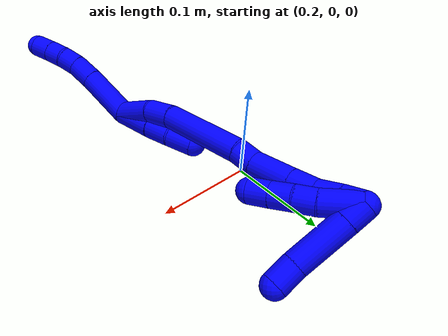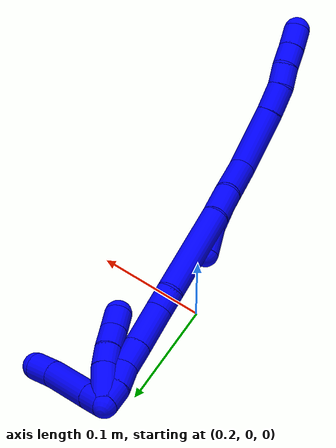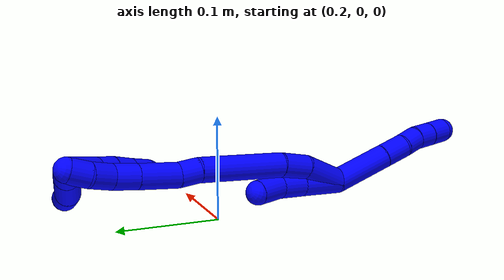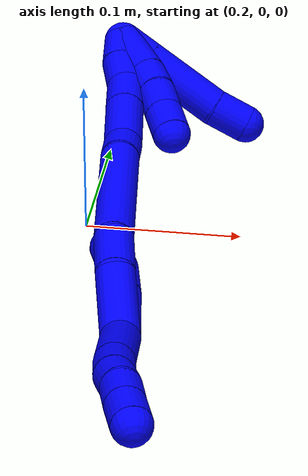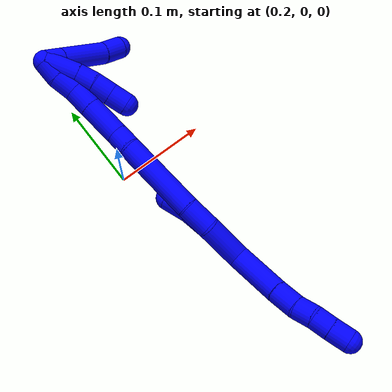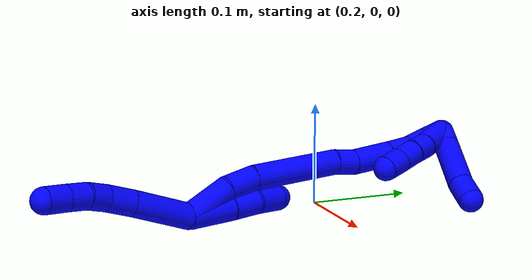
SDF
<sdf version="1.7">
 <world name="default">
  <model name="1">
   <static>0</static>
   <link name="1">
    <collision name="collision-cylinder-e_1_2_8">
     <pose>-0.002256 -0.019876 0.022284 0.72834 -0.075423 -0.028761</pose>
     <geometry><cylinder><radius>0.0125</radius><length>0.059891</length></cylinder></geometry>
     <surface>
      <friction><ode><mu>1.16</mu><mu2>1.16</mu2><slip1>0</slip1><slip2>0</slip2></ode></friction>
      <contact><ode><kp>1e+06</kp><kd>1</kd><max_vel>0</max_vel><min_depth>0.001</min_depth></ode></contact>
     </surface>
    </collision>
    <visual name="visual-cylinder-e_1_2_8">
     <pose>-0.002256 -0.019876 0.022284 0.72834 -0.075423 -0.028761</pose>
     <geometry><cylinder><radius>0.0125</radius><length>0.059891</length></cylinder></geometry>
     <material><ambient>0 0 1 1</ambient></material>
    </visual>
    <collision name="collision-cylinder-e_2_8_9">
     <pose>-0.006102 -0.048241 0.055035 0.681427 -0.117347 -0.041646</pose>
     <geometry><cylinder><radius>0.0125</radius><length>0.02714</length></cylinder></geometry>
     <surface>
      <friction><ode><mu>1.16</mu><mu2>1.16</mu2><slip1>0</slip1><slip2>0</slip2></ode></friction>
      <contact><ode><kp>1e+06</kp><kd>1</kd><max_vel>0</max_vel><min_depth>0.001</min_depth></ode></contact>
     </surface>
    </collision>
    <visual name="visual-cylinder-e_2_8_9">
     <pose>-0.006102 -0.048241 0.055035 0.681427 -0.117347 -0.041646</pose>
     <geometry><cylinder><radius>0.0125</radius><length>0.02714</length></cylinder></geometry>
     <material><ambient>0 0 1 1</ambient></material>
    </visual>
    <collision name="collision-cylinder-e_3_9_10">
     <pose>-0.010445 -0.062012 0.073838 0.564815 -0.272176 -0.079425</pose>
     <geometry><cylinder><radius>0.0125</radius><length>0.020492</length></cylinder></geometry>
     <surface>
      <friction><ode><mu>1.16</mu><mu2>1.16</mu2><slip1>0</slip1><slip2>0</slip2></ode></friction>
      <contact><ode><kp>1e+06</kp><kd>1</kd><max_vel>0</max_vel><min_depth>0.001</min_depth></ode></contact>
     </surface>
    </collision>
    <visual name="visual-cylinder-e_3_9_10">
     <pose>-0.010445 -0.062012 0.073838 0.564815 -0.272176 -0.079425</pose>
     <geometry><cylinder><radius>0.0125</radius><length>0.020492</length></cylinder></geometry>
     <material><ambient>0 0 1 1</ambient></material>
    </visual>
    <collision name="collision-cylinder-e_4_10_11">
     <pose>-0.014532 -0.07132 0.091398 0.411562 -0.131708 -0.02753</pose>
     <geometry><cylinder><radius>0.0125</radius><length>0.020303</length></cylinder></geometry>
     <surface>
      <friction><ode><mu>1.16</mu><mu2>1.16</mu2><slip1>0</slip1><slip2>0</slip2></ode></friction>
      <contact><ode><kp>1e+06</kp><kd>1</kd><max_vel>0</max_vel><min_depth>0.001</min_depth></ode></contact>
     </surface>
    </collision>
    <visual name="visual-cylinder-e_4_10_11">
     <pose>-0.014532 -0.07132 0.091398 0.411562 -0.131708 -0.02753</pose>
     <geometry><cylinder><radius>0.0125</radius><length>0.020303</length></cylinder></geometry>
     <material><ambient>0 0 1 1</ambient></material>
    </visual>
    <collision name="collision-cylinder-e_5_11_6">
     <pose>-0.017715 -0.079479 0.110741 0.387665 -0.167578 -0.032969</pose>
     <geometry><cylinder><radius>0.0125</radius><length>0.022174</length></cylinder></geometry>
     <surface>
      <friction><ode><mu>1.16</mu><mu2>1.16</mu2><slip1>0</slip1><slip2>0</slip2></ode></friction>
      <contact><ode><kp>1e+06</kp><kd>1</kd><max_vel>0</max_vel><min_depth>0.001</min_depth></ode></contact>
     </surface>
    </collision>
    <visual name="visual-cylinder-e_5_11_6">
     <pose>-0.017715 -0.079479 0.110741 0.387665 -0.167578 -0.032969</pose>
     <geometry><cylinder><radius>0.0125</radius><length>0.022174</length></cylinder></geometry>
     <material><ambient>0 0 1 1</ambient></material>
    </visual>
    <collision name="collision-cylinder-e_1_2_12">
     <pose>-0.000899 0.007512 -0.020849 -2.79576 -0.040524 0.231012</pose>
     <geometry><cylinder><radius>0.0125</radius><length>0.044358</length></cylinder></geometry>
     <surface>
      <friction><ode><mu>1.16</mu><mu2>1.16</mu2><slip1>0</slip1><slip2>0</slip2></ode></friction>
      <contact><ode><kp>1e+06</kp><kd>1</kd><max_vel>0</max_vel><min_depth>0.001</min_depth></ode></contact>
     </surface>
    </collision>
    <visual name="visual-cylinder-e_1_2_12">
     <pose>-0.000899 0.007512 -0.020849 -2.79576 -0.040524 0.231012</pose>
     <geometry><cylinder><radius>0.0125</radius><length>0.044358</length></cylinder></geometry>
     <material><ambient>0 0 1 1</ambient></material>
    </visual>
    <collision name="collision-cylinder-e_2_12_13">
     <pose>-0.001491 0.019186 -0.054912 -2.83652 0.022074 -0.143347</pose>
     <geometry><cylinder><radius>0.0125</radius><length>0.027716</length></cylinder></geometry>
     <surface>
      <friction><ode><mu>1.16</mu><mu2>1.16</mu2><slip1>0</slip1><slip2>0</slip2></ode></friction>
      <contact><ode><kp>1e+06</kp><kd>1</kd><max_vel>0</max_vel><min_depth>0.001</min_depth></ode></contact>
     </surface>
    </collision>
    <visual name="visual-cylinder-e_2_12_13">
     <pose>-0.001491 0.019186 -0.054912 -2.83652 0.022074 -0.143347</pose>
     <geometry><cylinder><radius>0.0125</radius><length>0.027716</length></cylinder></geometry>
     <material><ambient>0 0 1 1</ambient></material>
    </visual>
    <collision name="collision-cylinder-e_3_13_5">
     <pose>0.00154 0.028139 -0.080956 -2.78411 0.196461 -0.998698</pose>
     <geometry><cylinder><radius>0.0125</radius><length>0.027926</length></cylinder></geometry>
     <surface>
      <friction><ode><mu>1.16</mu><mu2>1.16</mu2><slip1>0</slip1><slip2>0</slip2></ode></friction>
      <contact><ode><kp>1e+06</kp><kd>1</kd><max_vel>0</max_vel><min_depth>0.001</min_depth></ode></contact>
     </surface>
    </collision>
    <visual name="visual-cylinder-e_3_13_5">
     <pose>0.00154 0.028139 -0.080956 -2.78411 0.196461 -0.998698</pose>
     <geometry><cylinder><radius>0.0125</radius><length>0.027926</length></cylinder></geometry>
     <material><ambient>0 0 1 1</ambient></material>
    </visual>
    <collision name="collision-cylinder-e_1_2_14">
     <pose>-0.002917 -0.0013 -0.023127 3.08546 -0.125281 -2.29986</pose>
     <geometry><cylinder><radius>0.0125</radius><length>0.046692</length></cylinder></geometry>
     <surface>
      <friction><ode><mu>1.16</mu><mu2>1.16</mu2><slip1>0</slip1><slip2>0</slip2></ode></friction>
      <contact><ode><kp>1e+06</kp><kd>1</kd><max_vel>0</max_vel><min_depth>0.001</min_depth></ode></contact>
     </surface>
    </collision>
    <visual name="visual-cylinder-e_1_2_14">
     <pose>-0.002917 -0.0013 -0.023127 3.08546 -0.125281 -2.29986</pose>
     <geometry><cylinder><radius>0.0125</radius><length>0.046692</length></cylinder></geometry>
     <material><ambient>0 0 1 1</ambient></material>
    </visual>
    <collision name="collision-cylinder-e_2_14_15">
     <pose>-0.00678 0.00022 -0.061044 -2.95328 -0.062727 0.641494</pose>
     <geometry><cylinder><radius>0.0125</radius><length>0.030174</length></cylinder></geometry>
     <surface>
      <friction><ode><mu>1.16</mu><mu2>1.16</mu2><slip1>0</slip1><slip2>0</slip2></ode></friction>
      <contact><ode><kp>1e+06</kp><kd>1</kd><max_vel>0</max_vel><min_depth>0.001</min_depth></ode></contact>
     </surface>
    </collision>
    <visual name="visual-cylinder-e_2_14_15">
     <pose>-0.00678 0.00022 -0.061044 -2.95328 -0.062727 0.641494</pose>
     <geometry><cylinder><radius>0.0125</radius><length>0.030174</length></cylinder></geometry>
     <material><ambient>0 0 1 1</ambient></material>
    </visual>
    <collision name="collision-cylinder-e_3_15_16">
     <pose>-0.01091 0.018577 -0.117913 -2.78783 -0.070877 0.391607</pose>
     <geometry><cylinder><radius>0.0125</radius><length>0.089936</length></cylinder></geometry>
     <surface>
      <friction><ode><mu>1.16</mu><mu2>1.16</mu2><slip1>0</slip1><slip2>0</slip2></ode></friction>
      <contact><ode><kp>1e+06</kp><kd>1</kd><max_vel>0</max_vel><min_depth>0.001</min_depth></ode></contact>
     </surface>
    </collision>
    <visual name="visual-cylinder-e_3_15_16">
     <pose>-0.01091 0.018577 -0.117913 -2.78783 -0.070877 0.391607</pose>
     <geometry><cylinder><radius>0.0125</radius><length>0.089936</length></cylinder></geometry>
     <material><ambient>0 0 1 1</ambient></material>
    </visual>
    <collision name="collision-cylinder-e_4_16_17">
     <pose>-0.01452 0.039585 -0.169158 -2.6037 -0.039769 0.144056</pose>
     <geometry><cylinder><radius>0.0125</radius><length>0.021366</length></cylinder></geometry>
     <surface>
      <friction><ode><mu>1.16</mu><mu2>1.16</mu2><slip1>0</slip1><slip2>0</slip2></ode></friction>
      <contact><ode><kp>1e+06</kp><kd>1</kd><max_vel>0</max_vel><min_depth>0.001</min_depth></ode></contact>
     </surface>
    </collision>
    <visual name="visual-cylinder-e_4_16_17">
     <pose>-0.01452 0.039585 -0.169158 -2.6037 -0.039769 0.144056</pose>
     <geometry><cylinder><radius>0.0125</radius><length>0.021366</length></cylinder></geometry>
     <material><ambient>0 0 1 1</ambient></material>
    </visual>
    <collision name="collision-cylinder-e_5_17_18">
     <pose>-0.016433 0.051611 -0.198127 -2.82183 -0.071235 0.43494</pose>
     <geometry><cylinder><radius>0.0125</radius><length>0.041826</length></cylinder></geometry>
     <surface>
      <friction><ode><mu>1.16</mu><mu2>1.16</mu2><slip1>0</slip1><slip2>0</slip2></ode></friction>
      <contact><ode><kp>1e+06</kp><kd>1</kd><max_vel>0</max_vel><min_depth>0.001</min_depth></ode></contact>
     </surface>
    </collision>
    <visual name="visual-cylinder-e_5_17_18">
     <pose>-0.016433 0.051611 -0.198127 -2.82183 -0.071235 0.43494</pose>
     <geometry><cylinder><radius>0.0125</radius><length>0.041826</length></cylinder></geometry>
     <material><ambient>0 0 1 1</ambient></material>
    </visual>
    <collision name="collision-cylinder-e_6_18_19">
     <pose>-0.019054 0.061893 -0.229914 -2.8403 -0.090026 0.576909</pose>
     <geometry><cylinder><radius>0.0125</radius><length>0.025201</length></cylinder></geometry>
     <surface>
      <friction><ode><mu>1.16</mu><mu2>1.16</mu2><slip1>0</slip1><slip2>0</slip2></ode></friction>
      <contact><ode><kp>1e+06</kp><kd>1</kd><max_vel>0</max_vel><min_depth>0.001</min_depth></ode></contact>
     </surface>
    </collision>
    <visual name="visual-cylinder-e_6_18_19">
     <pose>-0.019054 0.061893 -0.229914 -2.8403 -0.090026 0.576909</pose>
     <geometry><cylinder><radius>0.0125</radius><length>0.025201</length></cylinder></geometry>
     <material><ambient>0 0 1 1</ambient></material>
    </visual>
    <collision name="collision-cylinder-e_7_19_20">
     <pose>-0.019854 0.067078 -0.253629 -3.01768 0.028155 -0.446325</pose>
     <geometry><cylinder><radius>0.0125</radius><length>0.023651</length></cylinder></geometry>
     <surface>
      <friction><ode><mu>1.16</mu><mu2>1.16</mu2><slip1>0</slip1><slip2>0</slip2></ode></friction>
      <contact><ode><kp>1e+06</kp><kd>1</kd><max_vel>0</max_vel><min_depth>0.001</min_depth></ode></contact>
     </surface>
    </collision>
    <visual name="visual-cylinder-e_7_19_20">
     <pose>-0.019854 0.067078 -0.253629 -3.01768 0.028155 -0.446325</pose>
     <geometry><cylinder><radius>0.0125</radius><length>0.023651</length></cylinder></geometry>
     <material><ambient>0 0 1 1</ambient></material>
    </visual>
    <collision name="collision-cylinder-e_8_20_1">
     <pose>-0.021598 0.069822 -0.27565 -3.01753 -0.197643 2.02229</pose>
     <geometry><cylinder><radius>0.0125</radius><length>0.021154</length></cylinder></geometry>
     <surface>
      <friction><ode><mu>1.16</mu><mu2>1.16</mu2><slip1>0</slip1><slip2>0</slip2></ode></friction>
      <contact><ode><kp>1e+06</kp><kd>1</kd><max_vel>0</max_vel><min_depth>0.001</min_depth></ode></contact>
     </surface>
    </collision>
    <visual name="visual-cylinder-e_8_20_1">
     <pose>-0.021598 0.069822 -0.27565 -3.01753 -0.197643 2.02229</pose>
     <geometry><cylinder><radius>0.0125</radius><length>0.021154</length></cylinder></geometry>
     <material><ambient>0 0 1 1</ambient></material>
    </visual>
    <collision name="collision-cylinder-e_1_1_21">
     <pose>-0.029117 0.077612 -0.280023 -0.832727 -0.554026 0.250153</pose>
     <geometry><cylinder><radius>0.0125</radius><length>0.020686</length></cylinder></geometry>
     <surface>
      <friction><ode><mu>1.16</mu><mu2>1.16</mu2><slip1>0</slip1><slip2>0</slip2></ode></friction>
      <contact><ode><kp>1e+06</kp><kd>1</kd><max_vel>0</max_vel><min_depth>0.001</min_depth></ode></contact>
     </surface>
    </collision>
    <visual name="visual-cylinder-e_1_1_21">
     <pose>-0.029117 0.077612 -0.280023 -0.832727 -0.554026 0.250153</pose>
     <geometry><cylinder><radius>0.0125</radius><length>0.020686</length></cylinder></geometry>
     <material><ambient>0 0 1 1</ambient></material>
    </visual>
    <collision name="collision-cylinder-e_2_21_22">
     <pose>-0.049185 0.10114 -0.258066 -0.8151 -0.558901 0.246517</pose>
     <geometry><cylinder><radius>0.0125</radius><length>0.055168</length></cylinder></geometry>
     <surface>
      <friction><ode><mu>1.16</mu><mu2>1.16</mu2><slip1>0</slip1><slip2>0</slip2></ode></friction>
      <contact><ode><kp>1e+06</kp><kd>1</kd><max_vel>0</max_vel><min_depth>0.001</min_depth></ode></contact>
     </surface>
    </collision>
    <visual name="visual-cylinder-e_2_21_22">
     <pose>-0.049185 0.10114 -0.258066 -0.8151 -0.558901 0.246517</pose>
     <geometry><cylinder><radius>0.0125</radius><length>0.055168</length></cylinder></geometry>
     <material><ambient>0 0 1 1</ambient></material>
    </visual>
    <collision name="collision-cylinder-e_3_22_4">
     <pose>-0.071403 0.125702 -0.236437 -0.932875 -0.679994 0.352508</pose>
     <geometry><cylinder><radius>0.0125</radius><length>0.024146</length></cylinder></geometry>
     <surface>
      <friction><ode><mu>1.16</mu><mu2>1.16</mu2><slip1>0</slip1><slip2>0</slip2></ode></friction>
      <contact><ode><kp>1e+06</kp><kd>1</kd><max_vel>0</max_vel><min_depth>0.001</min_depth></ode></contact>
     </surface>
    </collision>
    <visual name="visual-cylinder-e_3_22_4">
     <pose>-0.071403 0.125702 -0.236437 -0.932875 -0.679994 0.352508</pose>
     <geometry><cylinder><radius>0.0125</radius><length>0.024146</length></cylinder></geometry>
     <material><ambient>0 0 1 1</ambient></material>
    </visual>
    <collision name="collision-cylinder-e_1_1_23">
     <pose>-0.029302 0.070851 -0.267972 0.014174 -0.303464 -0.002167</pose>
     <geometry><cylinder><radius>0.0125</radius><length>0.037662</length></cylinder></geometry>
     <surface>
      <friction><ode><mu>1.16</mu><mu2>1.16</mu2><slip1>0</slip1><slip2>0</slip2></ode></friction>
      <contact><ode><kp>1e+06</kp><kd>1</kd><max_vel>0</max_vel><min_depth>0.001</min_depth></ode></contact>
     </surface>
    </collision>
    <visual name="visual-cylinder-e_1_1_23">
     <pose>-0.029302 0.070851 -0.267972 0.014174 -0.303464 -0.002167</pose>
     <geometry><cylinder><radius>0.0125</radius><length>0.037662</length></cylinder></geometry>
     <material><ambient>0 0 1 1</ambient></material>
    </visual>
    <collision name="collision-cylinder-e_2_23_24">
     <pose>-0.03696 0.069368 -0.240155 0.124103 -0.201799 -0.012581</pose>
     <geometry><cylinder><radius>0.0125</radius><length>0.020261</length></cylinder></geometry>
     <surface>
      <friction><ode><mu>1.16</mu><mu2>1.16</mu2><slip1>0</slip1><slip2>0</slip2></ode></friction>
      <contact><ode><kp>1e+06</kp><kd>1</kd><max_vel>0</max_vel><min_depth>0.001</min_depth></ode></contact>
     </surface>
    </collision>
    <visual name="visual-cylinder-e_2_23_24">
     <pose>-0.03696 0.069368 -0.240155 0.124103 -0.201799 -0.012581</pose>
     <geometry><cylinder><radius>0.0125</radius><length>0.020261</length></cylinder></geometry>
     <material><ambient>0 0 1 1</ambient></material>
    </visual>
    <collision name="collision-cylinder-e_3_24_25">
     <pose>-0.040015 0.067461 -0.219834 0.064631 -0.097307 -0.003148</pose>
     <geometry><cylinder><radius>0.0125</radius><length>0.021089</length></cylinder></geometry>
     <surface>
      <friction><ode><mu>1.16</mu><mu2>1.16</mu2><slip1>0</slip1><slip2>0</slip2></ode></friction>
      <contact><ode><kp>1e+06</kp><kd>1</kd><max_vel>0</max_vel><min_depth>0.001</min_depth></ode></contact>
     </surface>
    </collision>
    <visual name="visual-cylinder-e_3_24_25">
     <pose>-0.040015 0.067461 -0.219834 0.064631 -0.097307 -0.003148</pose>
     <geometry><cylinder><radius>0.0125</radius><length>0.021089</length></cylinder></geometry>
     <material><ambient>0 0 1 1</ambient></material>
    </visual>
    <collision name="collision-cylinder-e_4_25_3">
     <pose>-0.042226 0.06581 -0.19898 0.093519 -0.113276 -0.005306</pose>
     <geometry><cylinder><radius>0.0125</radius><length>0.020988</length></cylinder></geometry>
     <surface>
      <friction><ode><mu>1.16</mu><mu2>1.16</mu2><slip1>0</slip1><slip2>0</slip2></ode></friction>
      <contact><ode><kp>1e+06</kp><kd>1</kd><max_vel>0</max_vel><min_depth>0.001</min_depth></ode></contact>
     </surface>
    </collision>
    <visual name="visual-cylinder-e_4_25_3">
     <pose>-0.042226 0.06581 -0.19898 0.093519 -0.113276 -0.005306</pose>
     <geometry><cylinder><radius>0.0125</radius><length>0.020988</length></cylinder></geometry>
     <material><ambient>0 0 1 1</ambient></material>
    </visual>
    <collision name="collision-sphere-3">
     <pose>-0.043412 0.064836 -0.188599 0 -0 0</pose>
     <geometry><sphere><radius>0.0125</radius></sphere></geometry>
     <surface>
      <friction><ode><mu>1.16</mu><mu2>1.16</mu2><slip1>0</slip1><slip2>0</slip2></ode></friction>
      <contact><ode><kp>1e+06</kp><kd>1</kd><max_vel>0</max_vel><min_depth>0.001</min_depth></ode></contact>
     </surface>
    </collision>
    <visual name="visual-sphere-3">
     <pose>-0.043412 0.064836 -0.188599 0 -0 0</pose>
     <geometry><sphere><radius>0.0125</radius></sphere></geometry>
     <material><ambient>0 0 1 1</ambient></material>
    </visual>
    <collision name="collision-sphere-25">
     <pose>-0.041039 0.066783 -0.209361 0 -0 0</pose>
     <geometry><sphere><radius>0.0125</radius></sphere></geometry>
     <surface>
      <friction><ode><mu>1.16</mu><mu2>1.16</mu2><slip1>0</slip1><slip2>0</slip2></ode></friction>
      <contact><ode><kp>1e+06</kp><kd>1</kd><max_vel>0</max_vel><min_depth>0.001</min_depth></ode></contact>
     </surface>
    </collision>
    <visual name="visual-sphere-25">
     <pose>-0.041039 0.066783 -0.209361 0 -0 0</pose>
     <geometry><sphere><radius>0.0125</radius></sphere></geometry>
     <material><ambient>0 0 1 1</ambient></material>
    </visual>
    <collision name="collision-sphere-24">
     <pose>-0.038991 0.068139 -0.230306 0 -0 0</pose>
     <geometry><sphere><radius>0.0125</radius></sphere></geometry>
     <surface>
      <friction><ode><mu>1.16</mu><mu2>1.16</mu2><slip1>0</slip1><slip2>0</slip2></ode></friction>
      <contact><ode><kp>1e+06</kp><kd>1</kd><max_vel>0</max_vel><min_depth>0.001</min_depth></ode></contact>
     </surface>
    </collision>
    <visual name="visual-sphere-24">
     <pose>-0.038991 0.068139 -0.230306 0 -0 0</pose>
     <geometry><sphere><radius>0.0125</radius></sphere></geometry>
     <material><ambient>0 0 1 1</ambient></material>
    </visual>
    <collision name="collision-sphere-23">
     <pose>-0.03493 0.070596 -0.250004 0 -0 0</pose>
     <geometry><sphere><radius>0.0125</radius></sphere></geometry>
     <surface>
      <friction><ode><mu>1.16</mu><mu2>1.16</mu2><slip1>0</slip1><slip2>0</slip2></ode></friction>
      <contact><ode><kp>1e+06</kp><kd>1</kd><max_vel>0</max_vel><min_depth>0.001</min_depth></ode></contact>
     </surface>
    </collision>
    <visual name="visual-sphere-23">
     <pose>-0.03493 0.070596 -0.250004 0 -0 0</pose>
     <geometry><sphere><radius>0.0125</radius></sphere></geometry>
     <material><ambient>0 0 1 1</ambient></material>
    </visual>
    <collision name="collision-sphere-4">
     <pose>-0.078994 0.133244 -0.230846 0 -0 0</pose>
     <geometry><sphere><radius>0.0125</radius></sphere></geometry>
     <surface>
      <friction><ode><mu>1.16</mu><mu2>1.16</mu2><slip1>0</slip1><slip2>0</slip2></ode></friction>
      <contact><ode><kp>1e+06</kp><kd>1</kd><max_vel>0</max_vel><min_depth>0.001</min_depth></ode></contact>
     </surface>
    </collision>
    <visual name="visual-sphere-4">
     <pose>-0.078994 0.133244 -0.230846 0 -0 0</pose>
     <geometry><sphere><radius>0.0125</radius></sphere></geometry>
     <material><ambient>0 0 1 1</ambient></material>
    </visual>
    <collision name="collision-sphere-22">
     <pose>-0.063811 0.118161 -0.242028 0 -0 0</pose>
     <geometry><sphere><radius>0.0125</radius></sphere></geometry>
     <surface>
      <friction><ode><mu>1.16</mu><mu2>1.16</mu2><slip1>0</slip1><slip2>0</slip2></ode></friction>
      <contact><ode><kp>1e+06</kp><kd>1</kd><max_vel>0</max_vel><min_depth>0.001</min_depth></ode></contact>
     </surface>
    </collision>
    <visual name="visual-sphere-22">
     <pose>-0.063811 0.118161 -0.242028 0 -0 0</pose>
     <geometry><sphere><radius>0.0125</radius></sphere></geometry>
     <material><ambient>0 0 1 1</ambient></material>
    </visual>
    <collision name="collision-sphere-21">
     <pose>-0.034558 0.084119 -0.274105 0 -0 0</pose>
     <geometry><sphere><radius>0.0125</radius></sphere></geometry>
     <surface>
      <friction><ode><mu>1.16</mu><mu2>1.16</mu2><slip1>0</slip1><slip2>0</slip2></ode></friction>
      <contact><ode><kp>1e+06</kp><kd>1</kd><max_vel>0</max_vel><min_depth>0.001</min_depth></ode></contact>
     </surface>
    </collision>
    <visual name="visual-sphere-21">
     <pose>-0.034558 0.084119 -0.274105 0 -0 0</pose>
     <geometry><sphere><radius>0.0125</radius></sphere></geometry>
     <material><ambient>0 0 1 1</ambient></material>
    </visual>
    <collision name="collision-sphere-1">
     <pose>-0.023675 0.071105 -0.285941 0 -0 0</pose>
     <geometry><sphere><radius>0.0125</radius></sphere></geometry>
     <surface>
      <friction><ode><mu>1.16</mu><mu2>1.16</mu2><slip1>0</slip1><slip2>0</slip2></ode></friction>
      <contact><ode><kp>1e+06</kp><kd>1</kd><max_vel>0</max_vel><min_depth>0.001</min_depth></ode></contact>
     </surface>
    </collision>
    <visual name="visual-sphere-1">
     <pose>-0.023675 0.071105 -0.285941 0 -0 0</pose>
     <geometry><sphere><radius>0.0125</radius></sphere></geometry>
     <material><ambient>0 0 1 1</ambient></material>
    </visual>
    <collision name="collision-sphere-6">
     <pose>-0.019564 -0.083611 0.120862 0 -0 0</pose>
     <geometry><sphere><radius>0.0125</radius></sphere></geometry>
     <surface>
      <friction><ode><mu>1.16</mu><mu2>1.16</mu2><slip1>0</slip1><slip2>0</slip2></ode></friction>
      <contact><ode><kp>1e+06</kp><kd>1</kd><max_vel>0</max_vel><min_depth>0.001</min_depth></ode></contact>
     </surface>
    </collision>
    <visual name="visual-sphere-6">
     <pose>-0.019564 -0.083611 0.120862 0 -0 0</pose>
     <geometry><sphere><radius>0.0125</radius></sphere></geometry>
     <material><ambient>0 0 1 1</ambient></material>
    </visual>
    <collision name="collision-sphere-11">
     <pose>-0.015866 -0.075346 0.100621 0 -0 0</pose>
     <geometry><sphere><radius>0.0125</radius></sphere></geometry>
     <surface>
      <friction><ode><mu>1.16</mu><mu2>1.16</mu2><slip1>0</slip1><slip2>0</slip2></ode></friction>
      <contact><ode><kp>1e+06</kp><kd>1</kd><max_vel>0</max_vel><min_depth>0.001</min_depth></ode></contact>
     </surface>
    </collision>
    <visual name="visual-sphere-11">
     <pose>-0.015866 -0.075346 0.100621 0 -0 0</pose>
     <geometry><sphere><radius>0.0125</radius></sphere></geometry>
     <material><ambient>0 0 1 1</ambient></material>
    </visual>
    <collision name="collision-sphere-10">
     <pose>-0.013199 -0.067295 0.082174 0 -0 0</pose>
     <geometry><sphere><radius>0.0125</radius></sphere></geometry>
     <surface>
      <friction><ode><mu>1.16</mu><mu2>1.16</mu2><slip1>0</slip1><slip2>0</slip2></ode></friction>
      <contact><ode><kp>1e+06</kp><kd>1</kd><max_vel>0</max_vel><min_depth>0.001</min_depth></ode></contact>
     </surface>
    </collision>
    <visual name="visual-sphere-10">
     <pose>-0.013199 -0.067295 0.082174 0 -0 0</pose>
     <geometry><sphere><radius>0.0125</radius></sphere></geometry>
     <material><ambient>0 0 1 1</ambient></material>
    </visual>
    <collision name="collision-sphere-9">
     <pose>-0.00769 -0.05673 0.065502 0 -0 0</pose>
     <geometry><sphere><radius>0.0125</radius></sphere></geometry>
     <surface>
      <friction><ode><mu>1.16</mu><mu2>1.16</mu2><slip1>0</slip1><slip2>0</slip2></ode></friction>
      <contact><ode><kp>1e+06</kp><kd>1</kd><max_vel>0</max_vel><min_depth>0.001</min_depth></ode></contact>
     </surface>
    </collision>
    <visual name="visual-sphere-9">
     <pose>-0.00769 -0.05673 0.065502 0 -0 0</pose>
     <geometry><sphere><radius>0.0125</radius></sphere></geometry>
     <material><ambient>0 0 1 1</ambient></material>
    </visual>
    <collision name="collision-sphere-2">
     <geometry><sphere><radius>0.0125</radius></sphere></geometry>
     <surface>
      <friction><ode><mu>1.16</mu><mu2>1.16</mu2><slip1>0</slip1><slip2>0</slip2></ode></friction>
      <contact><ode><kp>1e+06</kp><kd>1</kd><max_vel>0</max_vel><min_depth>0.001</min_depth></ode></contact>
     </surface>
    </collision>
    <visual name="visual-sphere-2">
     <geometry><sphere><radius>0.0125</radius></sphere></geometry>
     <material><ambient>0 0 1 1</ambient></material>
    </visual>
    <collision name="collision-sphere-19">
     <pose>-0.020187 0.065617 -0.241899 0 -0 0</pose>
     <geometry><sphere><radius>0.0125</radius></sphere></geometry>
     <surface>
      <friction><ode><mu>1.16</mu><mu2>1.16</mu2><slip1>0</slip1><slip2>0</slip2></ode></friction>
      <contact><ode><kp>1e+06</kp><kd>1</kd><max_vel>0</max_vel><min_depth>0.001</min_depth></ode></contact>
     </surface>
    </collision>
    <visual name="visual-sphere-19">
     <pose>-0.020187 0.065617 -0.241899 0 -0 0</pose>
     <geometry><sphere><radius>0.0125</radius></sphere></geometry>
     <material><ambient>0 0 1 1</ambient></material>
    </visual>
    <collision name="collision-sphere-8">
     <pose>-0.004513 -0.039752 0.044568 0 -0 0</pose>
     <geometry><sphere><radius>0.0125</radius></sphere></geometry>
     <surface>
      <friction><ode><mu>1.16</mu><mu2>1.16</mu2><slip1>0</slip1><slip2>0</slip2></ode></friction>
      <contact><ode><kp>1e+06</kp><kd>1</kd><max_vel>0</max_vel><min_depth>0.001</min_depth></ode></contact>
     </surface>
    </collision>
    <visual name="visual-sphere-8">
     <pose>-0.004513 -0.039752 0.044568 0 -0 0</pose>
     <geometry><sphere><radius>0.0125</radius></sphere></geometry>
     <material><ambient>0 0 1 1</ambient></material>
    </visual>
    <collision name="collision-sphere-12">
     <pose>-0.001797 0.015024 -0.041697 0 -0 0</pose>
     <geometry><sphere><radius>0.0125</radius></sphere></geometry>
     <surface>
      <friction><ode><mu>1.16</mu><mu2>1.16</mu2><slip1>0</slip1><slip2>0</slip2></ode></friction>
      <contact><ode><kp>1e+06</kp><kd>1</kd><max_vel>0</max_vel><min_depth>0.001</min_depth></ode></contact>
     </surface>
    </collision>
    <visual name="visual-sphere-12">
     <pose>-0.001797 0.015024 -0.041697 0 -0 0</pose>
     <geometry><sphere><radius>0.0125</radius></sphere></geometry>
     <material><ambient>0 0 1 1</ambient></material>
    </visual>
    <collision name="collision-sphere-13">
     <pose>-0.001185 0.023347 -0.068127 0 -0 0</pose>
     <geometry><sphere><radius>0.0125</radius></sphere></geometry>
     <surface>
      <friction><ode><mu>1.16</mu><mu2>1.16</mu2><slip1>0</slip1><slip2>0</slip2></ode></friction>
      <contact><ode><kp>1e+06</kp><kd>1</kd><max_vel>0</max_vel><min_depth>0.001</min_depth></ode></contact>
     </surface>
    </collision>
    <visual name="visual-sphere-13">
     <pose>-0.001185 0.023347 -0.068127 0 -0 0</pose>
     <geometry><sphere><radius>0.0125</radius></sphere></geometry>
     <material><ambient>0 0 1 1</ambient></material>
    </visual>
    <collision name="collision-sphere-5">
     <pose>0.004266 0.032931 -0.093785 0 -0 0</pose>
     <geometry><sphere><radius>0.0125</radius></sphere></geometry>
     <surface>
      <friction><ode><mu>1.16</mu><mu2>1.16</mu2><slip1>0</slip1><slip2>0</slip2></ode></friction>
      <contact><ode><kp>1e+06</kp><kd>1</kd><max_vel>0</max_vel><min_depth>0.001</min_depth></ode></contact>
     </surface>
    </collision>
    <visual name="visual-sphere-5">
     <pose>0.004266 0.032931 -0.093785 0 -0 0</pose>
     <geometry><sphere><radius>0.0125</radius></sphere></geometry>
     <material><ambient>0 0 1 1</ambient></material>
    </visual>
    <collision name="collision-sphere-14">
     <pose>-0.005834 -0.002599 -0.046253 0 -0 0</pose>
     <geometry><sphere><radius>0.0125</radius></sphere></geometry>
     <surface>
      <friction><ode><mu>1.16</mu><mu2>1.16</mu2><slip1>0</slip1><slip2>0</slip2></ode></friction>
      <contact><ode><kp>1e+06</kp><kd>1</kd><max_vel>0</max_vel><min_depth>0.001</min_depth></ode></contact>
     </surface>
    </collision>
    <visual name="visual-sphere-14">
     <pose>-0.005834 -0.002599 -0.046253 0 -0 0</pose>
     <geometry><sphere><radius>0.0125</radius></sphere></geometry>
     <material><ambient>0 0 1 1</ambient></material>
    </visual>
    <collision name="collision-sphere-15">
     <pose>-0.007726 0.003038 -0.075836 0 -0 0</pose>
     <geometry><sphere><radius>0.0125</radius></sphere></geometry>
     <surface>
      <friction><ode><mu>1.16</mu><mu2>1.16</mu2><slip1>0</slip1><slip2>0</slip2></ode></friction>
      <contact><ode><kp>1e+06</kp><kd>1</kd><max_vel>0</max_vel><min_depth>0.001</min_depth></ode></contact>
     </surface>
    </collision>
    <visual name="visual-sphere-15">
     <pose>-0.007726 0.003038 -0.075836 0 -0 0</pose>
     <geometry><sphere><radius>0.0125</radius></sphere></geometry>
     <material><ambient>0 0 1 1</ambient></material>
    </visual>
    <collision name="collision-sphere-16">
     <pose>-0.014095 0.034116 -0.15999 0 -0 0</pose>
     <geometry><sphere><radius>0.0125</radius></sphere></geometry>
     <surface>
      <friction><ode><mu>1.16</mu><mu2>1.16</mu2><slip1>0</slip1><slip2>0</slip2></ode></friction>
      <contact><ode><kp>1e+06</kp><kd>1</kd><max_vel>0</max_vel><min_depth>0.001</min_depth></ode></contact>
     </surface>
    </collision>
    <visual name="visual-sphere-16">
     <pose>-0.014095 0.034116 -0.15999 0 -0 0</pose>
     <geometry><sphere><radius>0.0125</radius></sphere></geometry>
     <material><ambient>0 0 1 1</ambient></material>
    </visual>
    <collision name="collision-sphere-17">
     <pose>-0.014944 0.045054 -0.178325 0 -0 0</pose>
     <geometry><sphere><radius>0.0125</radius></sphere></geometry>
     <surface>
      <friction><ode><mu>1.16</mu><mu2>1.16</mu2><slip1>0</slip1><slip2>0</slip2></ode></friction>
      <contact><ode><kp>1e+06</kp><kd>1</kd><max_vel>0</max_vel><min_depth>0.001</min_depth></ode></contact>
     </surface>
    </collision>
    <visual name="visual-sphere-17">
     <pose>-0.014944 0.045054 -0.178325 0 -0 0</pose>
     <geometry><sphere><radius>0.0125</radius></sphere></geometry>
     <material><ambient>0 0 1 1</ambient></material>
    </visual>
    <collision name="collision-sphere-18">
     <pose>-0.017921 0.058168 -0.21793 0 -0 0</pose>
     <geometry><sphere><radius>0.0125</radius></sphere></geometry>
     <surface>
      <friction><ode><mu>1.16</mu><mu2>1.16</mu2><slip1>0</slip1><slip2>0</slip2></ode></friction>
      <contact><ode><kp>1e+06</kp><kd>1</kd><max_vel>0</max_vel><min_depth>0.001</min_depth></ode></contact>
     </surface>
    </collision>
    <visual name="visual-sphere-18">
     <pose>-0.017921 0.058168 -0.21793 0 -0 0</pose>
     <geometry><sphere><radius>0.0125</radius></sphere></geometry>
     <material><ambient>0 0 1 1</ambient></material>
    </visual>
    <collision name="collision-sphere-20">
     <pose>-0.019521 0.068539 -0.265359 0 -0 0</pose>
     <geometry><sphere><radius>0.0125</radius></sphere></geometry>
     <surface>
      <friction><ode><mu>1.16</mu><mu2>1.16</mu2><slip1>0</slip1><slip2>0</slip2></ode></friction>
      <contact><ode><kp>1e+06</kp><kd>1</kd><max_vel>0</max_vel><min_depth>0.001</min_depth></ode></contact>
     </surface>
    </collision>
    <visual name="visual-sphere-20">
     <pose>-0.019521 0.068539 -0.265359 0 -0 0</pose>
     <geometry><sphere><radius>0.0125</radius></sphere></geometry>
     <material><ambient>0 0 1 1</ambient></material>
    </visual>
    <inertial>
     <pose>-0.018119 0.028017 -0.118154 0 -0 0</pose>
     <mass>0.75</mass>
     <inertia><ixx>0.000152</ixx><ixy>0</ixy><ixz>0</ixz><iyy>6e-06</iyy><iyz>0</iyz><izz>-1.2e-05</izz></inertia>
    </inertial>
   </link>
   <pose>0.245347 -0.146769 0.012082 -1.96426 0.407764 -2.97932</pose>
  </model>
 </world>
</sdf>
